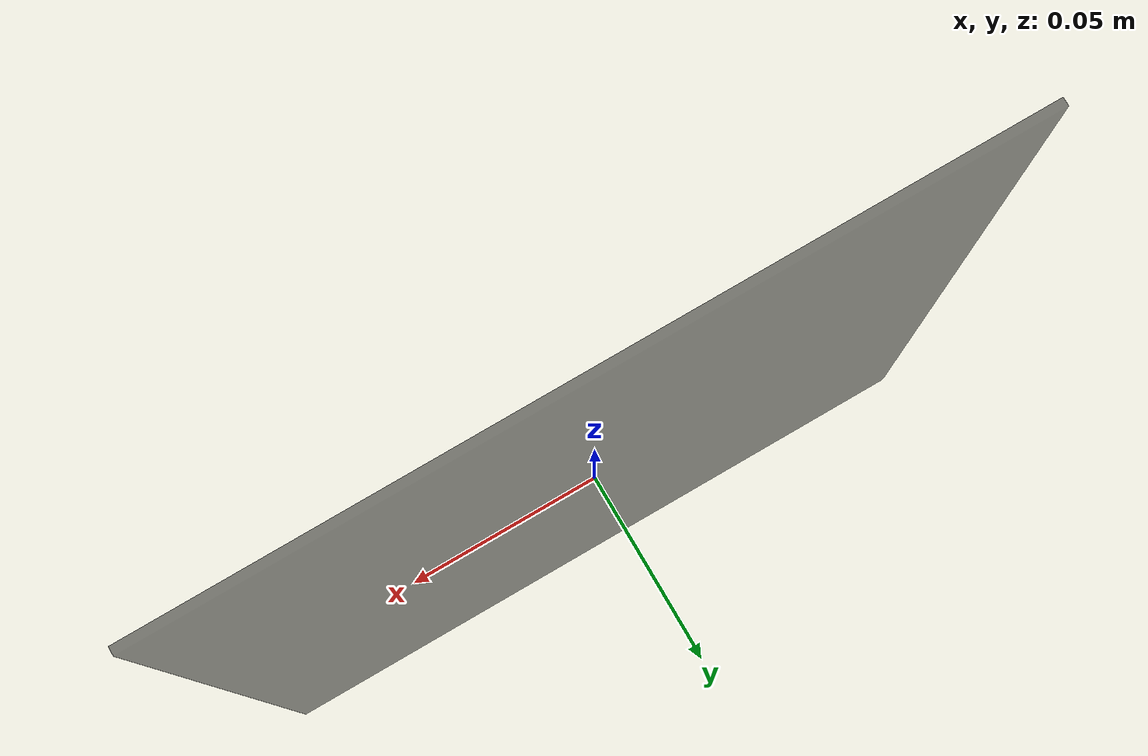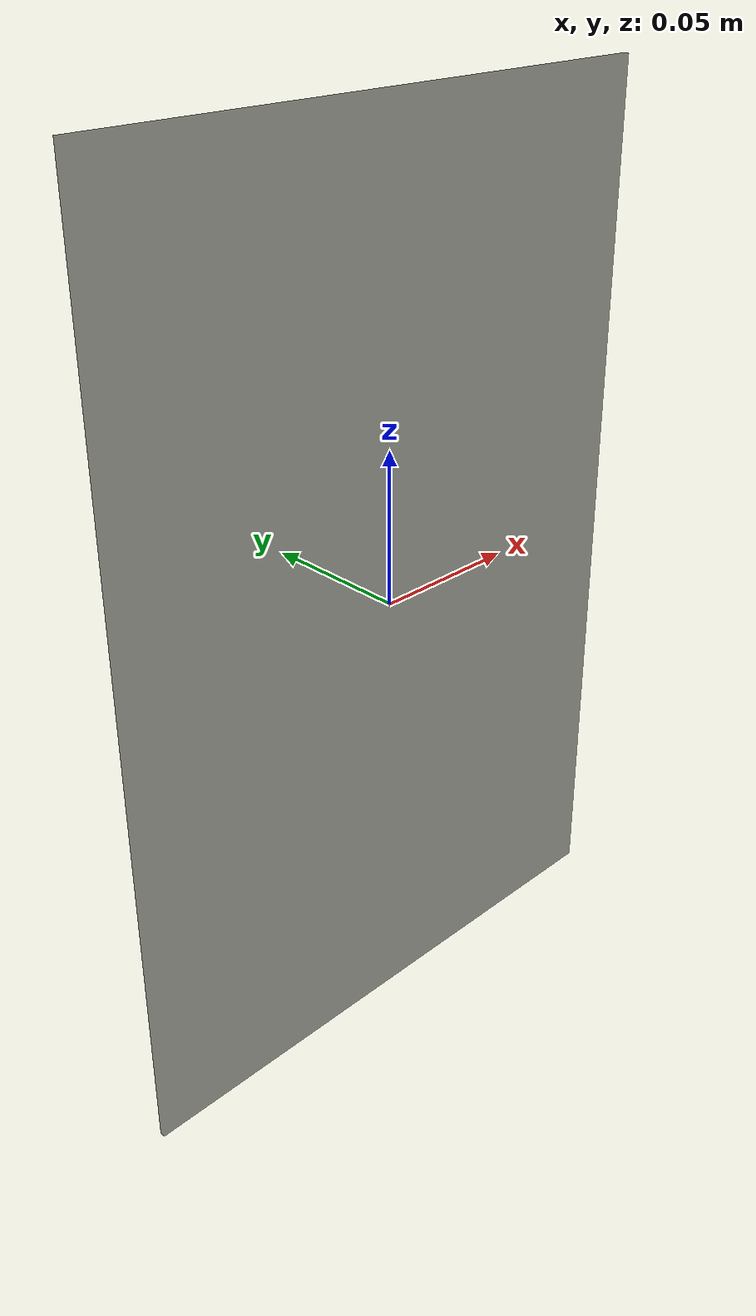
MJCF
<?xml version="1.0"?>
<mujoco model="cube">
  <worldbody>
    <body>
      <geom name="mesh" type="box" size="0.1 0.001 0.15" density="500" mass="2" friction="1 0.1 0.01" solimp="0.95 0.99 0.001" solref="0.004 1" rgba="0 0 0 0.5"/>
    </body>
  </worldbody>
</mujoco>
